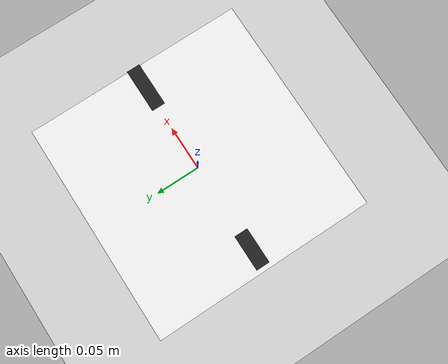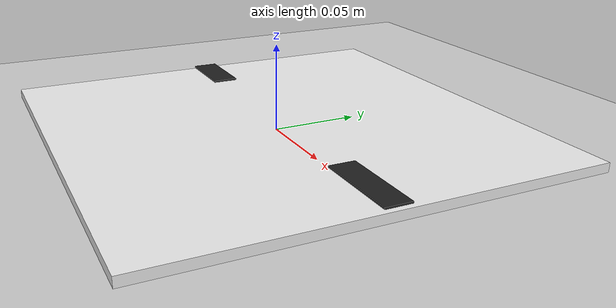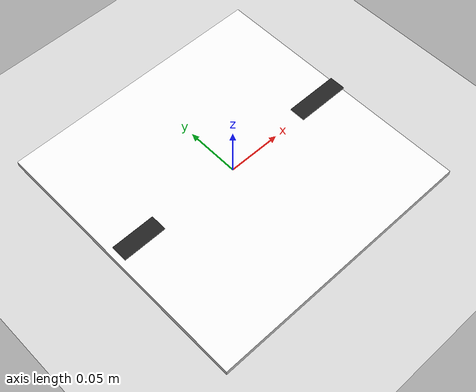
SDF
<sdf version="1.7">
  <world name="default">
  <model name="base_tile">
    <static>true</static>
    <pose>0 0 0 0 0 0</pose>
    <link name="base_link">
      <collision name="collision">
        <geometry>
          <box>
            <size>0.25 0.25 0.01</size>
          </box>
        </geometry>
        <surface>
          <friction>
            <ode>
              <mu>1</mu>
              <mu2>1</mu2>
            </ode>
          </friction>
        </surface>
      </collision>
      <visual name="visual">
        <geometry>
          <box>
            <size>0.25 0.25 0.01</size>
          </box>
        </geometry>
        <material>
          <script>
            <uri>file://media/materials/scripts/gazebo.material</uri>
            <name>Gazebo/White</name>
          </script>
        </material>
      </visual>
      <visual name="line1">
        <pose>-0.1 0 0.0075 0 0 0</pose>
        <geometry>
          <box>
            <size>0.04 0.015 0.001</size>
          </box>
        </geometry>
        <material>
          <script>
            <uri>file://media/materials/scripts/gazebo.material</uri>
            <name>Gazebo/Black</name>
          </script>
        </material>
      </visual>

      <visual name="line2">
        <pose>0.1 0 0.0075 0 0 0</pose>
        <geometry>
          <box>
            <size>0.05 0.015 0.001</size>
          </box>
        </geometry>
        <material>
          <script>
            <uri>file://media/materials/scripts/gazebo.material</uri>
            <name>Gazebo/Black</name>
          </script>
        </material>
      </visual>
    </link>
  </model>
  <model name='ground_plane'>
      <static>1</static>
      <link name='link'>
        <collision name='collision'>
          <geometry>
            <plane>
              <normal>0 0 1</normal>
              <size>100 100</size>
            </plane>
          </geometry>
          <surface>
            <contact>
              <collide_bitmask>65535</collide_bitmask>
              <ode/>
            </contact>
            <friction>
              <ode>
                <mu>100</mu>
                <mu2>50</mu2>
              </ode>
              <torsional>
                <ode/>
              </torsional>
            </friction>
            <bounce/>
          </surface>
          <max_contacts>10</max_contacts>
        </collision>
        <visual name='visual'>
          <cast_shadows>0</cast_shadows>
          <geometry>
            <plane>
              <normal>0 0 1</normal>
              <size>100 100</size>
            </plane>
          </geometry>
          <material>
            <script>
              <uri>file://media/materials/scripts/gazebo.material</uri>
              <name>Gazebo/Grey</name>
            </script>
          </material>
        </visual>
        <self_collide>0</self_collide>
        <enable_wind>0</enable_wind>
        <kinematic>0</kinematic>
      </link>
    </model>
  </world>
</sdf>
